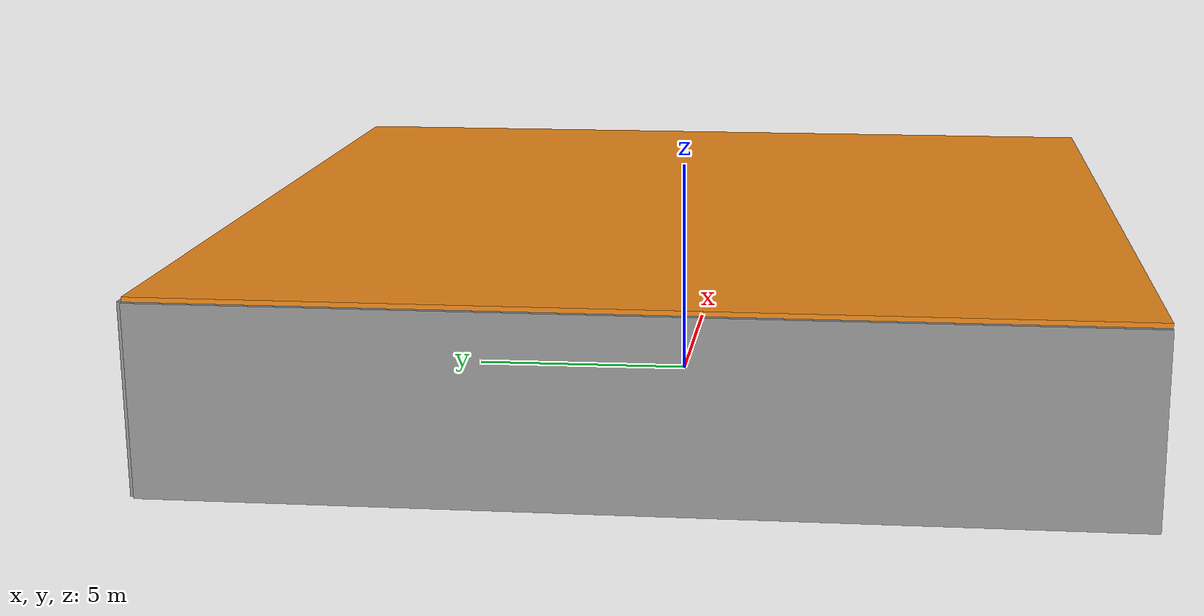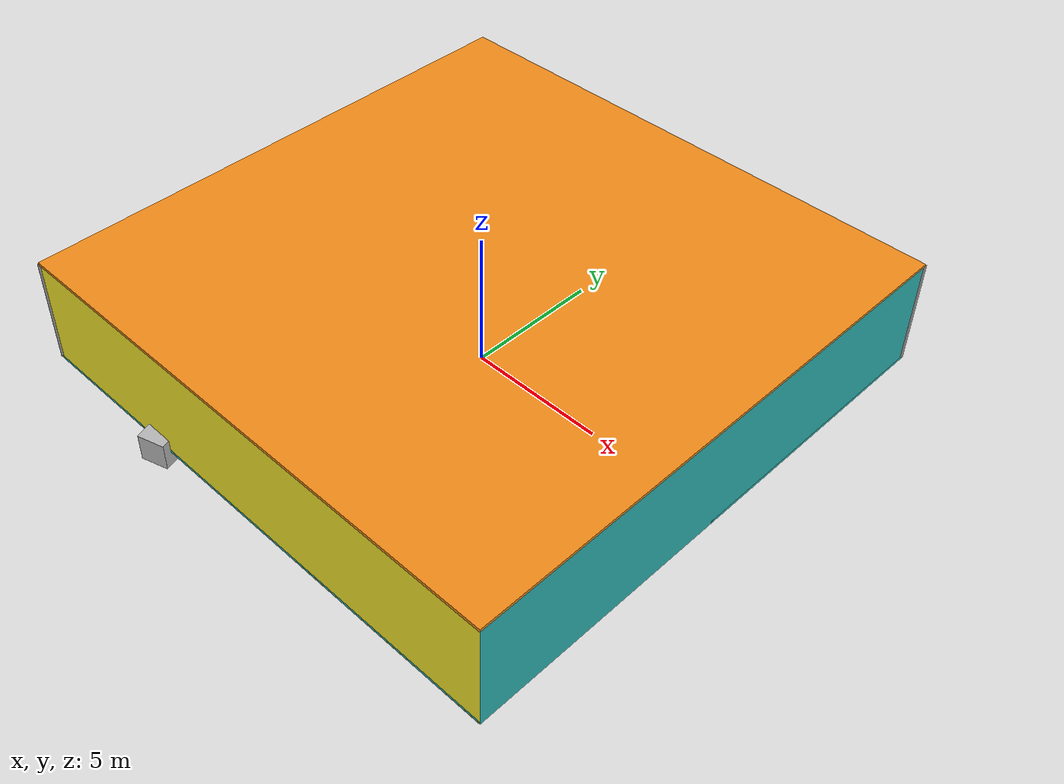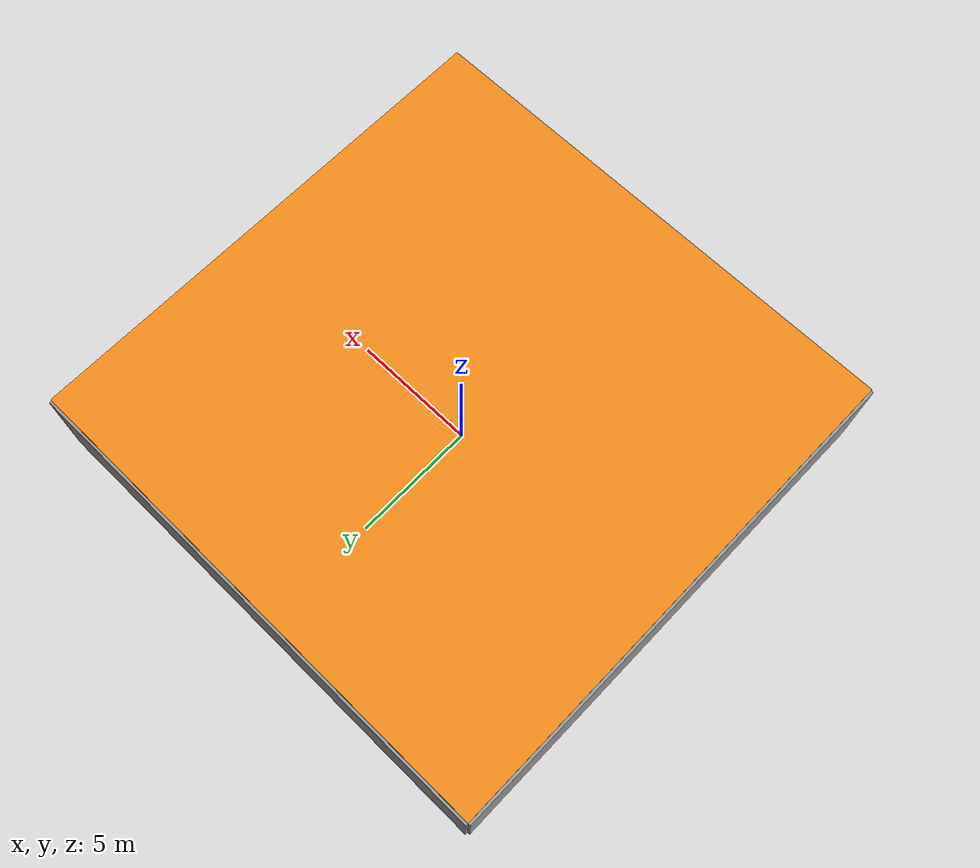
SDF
<sdf version="1.4">
 <world name="default">
  <physics type="ode">
   <max_step_size>0.001</max_step_size>
   <real_time_factor>1</real_time_factor>
   <real_time_update_rate>1000</real_time_update_rate>
   <gravity>0 0 -9.8</gravity>
  </physics>
  <scene><ambient>0.4 0.4 0.4 1</ambient><background>0.7 0.7 0.7 1</background><shadows>1</shadows></scene>
  <model name="Surrounding">
   <static>1</static>
   <link name="Ceiling">
    <collision name="Ceiling_Collision"><geometry><box><size>20 20 0.1</size></box></geometry></collision>
    <visual name="Ceiling_Visual">
     <geometry><box><size>20 20 0.1</size></box></geometry>
     <material>
      <script><uri>file://media/materials/scripts/gazebo.material</uri><name>Gazebo/Orange</name></script>
     </material>
    </visual>
    <pose>0 0 4.05 0 0 0</pose>
   </link>
   <link name="Wall_South">
    <collision name="Wall_South_Collision">
     <geometry><box><size>20 0 4</size></box></geometry>
     <pose>0 0 2 0 -0 0</pose>
    </collision>
    <visual name="Wall_South_Visual">
     <pose>0 0 2 0 -0 0</pose>
     <geometry><box><size>20 0 4</size></box></geometry>
     <material>
      <script><uri>file://media/materials/scripts/gazebo.material</uri><name>Gazebo/Yellow</name></script>
     </material>
    </visual>
    <velocity_decay><linear>0</linear><angular>0</angular></velocity_decay>
    <pose>0 -10 0 0 -0 0</pose>
   </link>
   <link name="Wall_East">
    <collision name="Wall_21_Collision">
     <geometry><box><size>20 0 4</size></box></geometry>
     <pose>0 0 2 0 -0 0</pose>
    </collision>
    <visual name="Wall_21_Visual">
     <pose>0 0 2 0 -0 0</pose>
     <geometry><box><size>20 0 4</size></box></geometry>
     <material>
      <script><uri>file://media/materials/scripts/gazebo.material</uri><name>Gazebo/TurquoiseGlow</name></script>
     </material>
    </visual>
    <velocity_decay><linear>0</linear><angular>0</angular></velocity_decay>
    <pose>10 0 0 0 -0 1.5708</pose>
   </link>
   <link name="Wall_North">
    <collision name="Wall_22_Collision">
     <geometry><box><size>20 0.2 4</size></box></geometry>
     <pose>0 0 2 0 -0 0</pose>
    </collision>
    <visual name="Wall_22_Visual">
     <pose>0 0 2 0 -0 0</pose>
     <geometry><box><size>20 0.2 4</size></box></geometry>
     <material>
      <script><uri>file://media/materials/scripts/gazebo.material</uri><name>Gazebo/Grey</name></script>
     </material>
    </visual>
    <velocity_decay><linear>0</linear><angular>0</angular></velocity_decay>
    <pose>0 10 0 0 -0 0</pose>
   </link>
   <link name="Wall_West">
    <collision name="Wall_23_Collision">
     <geometry><box><size>20 0.2 4</size></box></geometry>
     <pose>0 0 2 0 -0 0</pose>
    </collision>
    <visual name="Wall_23_Visual">
     <pose>0 0 2 0 -0 0</pose>
     <geometry><box><size>20 0.2 4</size></box></geometry>
     <material>
      <script><uri>file://media/materials/scripts/gazebo.material</uri><name>Gazebo/Grey</name></script>
     </material>
    </visual>
    <velocity_decay><linear>0</linear><angular>0</angular></velocity_decay>
    <pose>-10 0 0 0 0 -1.5708</pose>
   </link>
   <link name="Ground_link">
    <collision name="collision">
     <pose>0 0 .05 0 -0 0</pose>
     <geometry><box><size>20 20 0.1</size></box></geometry>
    </collision>
    <visual name="visual">
     <pose>0 0 .05 0 -0 0</pose>
     <geometry><box><size>20 20 0.1</size></box></geometry>
     <material>
      <script>
       <uri>file://media/materials/scripts/gazebo.material</uri>
       <name>Gazebo/TurquoiseGlowOutline</name>
      </script>
     </material>
    </visual>
   </link>
   <static>1</static>
  </model>
  <spherical_coordinates>
   <surface_model>EARTH_WGS84</surface_model>
   <latitude_deg>0</latitude_deg>
   <longitude_deg>0</longitude_deg>
   <elevation>0</elevation>
   <heading_deg>0</heading_deg>
  </spherical_coordinates>
  <light name="lightball_0" type="diffuse">
   <diffuse>0.8 0.8 0.8 1</diffuse>
   <specular>0.2 0.2 0.2 1</specular>
   <attenuation>
    <range>100</range>
    <constant>0.7</constant>
    <linear>0.01</linear>
    <quadratic>0.001</quadratic>
   </attenuation>
   <direction>-0.5 0.1 -0.9</direction>
   <pose>-1.69038987408 5.81250356178 1.6199712147 0 0 0</pose>
  </light>
  <light name="lightball_1" type="diffuse">
   <diffuse>0.8 0.8 0.8 1</diffuse>
   <specular>0.2 0.2 0.2 1</specular>
   <attenuation>
    <range>100</range>
    <constant>0.7</constant>
    <linear>0.01</linear>
    <quadratic>0.001</quadratic>
   </attenuation>
   <direction>-0.5 0.1 -0.9</direction>
   <pose>7.17310551491 -6.50413211522 1.30223239225 0 0 0</pose>
  </light>
  <light name="lightball_2" type="diffuse">
   <diffuse>0.8 0.8 0.8 1</diffuse>
   <specular>0.2 0.2 0.2 1</specular>
   <attenuation>
    <range>100</range>
    <constant>0.7</constant>
    <linear>0.01</linear>
    <quadratic>0.001</quadratic>
   </attenuation>
   <direction>-0.5 0.1 -0.9</direction>
   <pose>-8.14604274068 0.509614618002 1.18945666494 0 0 0</pose>
  </light>
  <light name="lightball_3" type="diffuse">
   <diffuse>0.8 0.8 0.8 1</diffuse>
   <specular>0.2 0.2 0.2 1</specular>
   <attenuation>
    <range>100</range>
    <constant>0.7</constant>
    <linear>0.01</linear>
    <quadratic>0.001</quadratic>
   </attenuation>
   <direction>-0.5 0.1 -0.9</direction>
   <pose>7.09469174064 0.802687089494 3.30134202628 0 0 0</pose>
  </light>
  <light name="lightball_4" type="diffuse">
   <diffuse>0.8 0.8 0.8 1</diffuse>
   <specular>0.2 0.2 0.2 1</specular>
   <attenuation>
    <range>100</range>
    <constant>0.7</constant>
    <linear>0.01</linear>
    <quadratic>0.001</quadratic>
   </attenuation>
   <direction>-0.5 0.1 -0.9</direction>
   <pose>-4.32893342584 7.02059850232 1.43342669449 0 0 0</pose>
  </light>
  <light name="lightball_5" type="diffuse">
   <diffuse>0.8 0.8 0.8 1</diffuse>
   <specular>0.2 0.2 0.2 1</specular>
   <attenuation>
    <range>100</range>
    <constant>0.7</constant>
    <linear>0.01</linear>
    <quadratic>0.001</quadratic>
   </attenuation>
   <direction>-0.5 0.1 -0.9</direction>
   <pose>-1.61411355098 -2.07374431604 3.67867032558 0 0 0</pose>
  </light>
  <light name="lightball_6" type="diffuse">
   <diffuse>0.8 0.8 0.8 1</diffuse>
   <specular>0.2 0.2 0.2 1</specular>
   <attenuation>
    <range>100</range>
    <constant>0.7</constant>
    <linear>0.01</linear>
    <quadratic>0.001</quadratic>
   </attenuation>
   <direction>-0.5 0.1 -0.9</direction>
   <pose>0.473515171721 4.38631399105 1.0203079301 0 0 0</pose>
  </light>
  <light name="lightball_7" type="diffuse">
   <diffuse>0.8 0.8 0.8 1</diffuse>
   <specular>0.2 0.2 0.2 1</specular>
   <attenuation>
    <range>100</range>
    <constant>0.7</constant>
    <linear>0.01</linear>
    <quadratic>0.001</quadratic>
   </attenuation>
   <direction>-0.5 0.1 -0.9</direction>
   <pose>3.26503792226 -0.757774695263 2.41926262875 0 0 0</pose>
  </light>
  <light name="lightball_8" type="diffuse">
   <diffuse>0.8 0.8 0.8 1</diffuse>
   <specular>0.2 0.2 0.2 1</specular>
   <attenuation>
    <range>100</range>
    <constant>0.7</constant>
    <linear>0.01</linear>
    <quadratic>0.001</quadratic>
   </attenuation>
   <direction>-0.5 0.1 -0.9</direction>
   <pose>-6.27508999582 8.70036331781 3.20781516711 0 0 0</pose>
  </light>
  <light name="lightball_9" type="diffuse">
   <diffuse>0.8 0.8 0.8 1</diffuse>
   <specular>0.2 0.2 0.2 1</specular>
   <attenuation>
    <range>100</range>
    <constant>0.7</constant>
    <linear>0.01</linear>
    <quadratic>0.001</quadratic>
   </attenuation>
   <direction>-0.5 0.1 -0.9</direction>
   <pose>1.64118079868 0.380284586239 1.94666872732 0 0 0</pose>
  </light>
  <light name="lightball_10" type="diffuse">
   <diffuse>0.8 0.8 0.8 1</diffuse>
   <specular>0.2 0.2 0.2 1</specular>
   <attenuation>
    <range>100</range>
    <constant>0.7</constant>
    <linear>0.01</linear>
    <quadratic>0.001</quadratic>
   </attenuation>
   <direction>-0.5 0.1 -0.9</direction>
   <pose>-2.16541787628 -4.21227507246 2.04519581459 0 0 0</pose>
  </light>
  <light name="lightball_11" type="diffuse">
   <diffuse>0.8 0.8 0.8 1</diffuse>
   <specular>0.2 0.2 0.2 1</specular>
   <attenuation>
    <range>100</range>
    <constant>0.7</constant>
    <linear>0.01</linear>
    <quadratic>0.001</quadratic>
   </attenuation>
   <direction>-0.5 0.1 -0.9</direction>
   <pose>-3.95358218817 6.05967760388 1.21736028421 0 0 0</pose>
  </light>
  <light name="lightball_12" type="diffuse">
   <diffuse>0.8 0.8 0.8 1</diffuse>
   <specular>0.2 0.2 0.2 1</specular>
   <attenuation>
    <range>100</range>
    <constant>0.7</constant>
    <linear>0.01</linear>
    <quadratic>0.001</quadratic>
   </attenuation>
   <direction>-0.5 0.1 -0.9</direction>
   <pose>-1.24684164969 -9.07497245484 3.2864048926 0 0 0</pose>
  </light>
  <light name="lightball_13" type="diffuse">
   <diffuse>0.8 0.8 0.8 1</diffuse>
   <specular>0.2 0.2 0.2 1</specular>
   <attenuation>
    <range>100</range>
    <constant>0.7</constant>
    <linear>0.01</linear>
    <quadratic>0.001</quadratic>
   </attenuation>
   <direction>-0.5 0.1 -0.9</direction>
   <pose>6.64693800311 -1.95924613332 1.19903176409 0 0 0</pose>
  </light>
  <include>
   <uri>model://construction_cone</uri>
   <pose>-6.94781565982 -8.50985469248 0 0 0 0.883481360549</pose>
  </include>
  <include>
   <uri>model://textured_shapes</uri>
   <pose>-4.76541455843 -8.51141607521 0 0 0 0.293314086452</pose>
  </include>
  <include>
   <uri>model://textured_shapes</uri>
   <pose>7.76226681153 6.33747676447 0 0 0 0.0511677295261</pose>
  </include>
 </world>
</sdf>

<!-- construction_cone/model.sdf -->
<sdf version="1.5">
  <model name="Construction Cone">
    <link name="link">
      <collision name="collision">
        <geometry>
          <mesh>
            <scale>10 10 10</scale>
            <uri>file://isr-testbed/construction_cone/meshes/construction_cone.dae</uri>
          </mesh>
        </geometry>
      </collision>
      <visual name="visual">
        <geometry>
          <mesh>
            <scale>10 10 10</scale>
            <uri>file://isr-testbed/construction_cone/meshes/construction_cone.dae</uri>
          </mesh>
        </geometry>
      </visual>
    </link>
  </model>
</sdf>

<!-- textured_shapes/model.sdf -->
<sdf version="1.6">
  <model name="textured_shapes">
    <pose>0 0 0.5 0 0 0</pose>
    <link name="box">
      <pose>0 -1.5 0 0 0 0</pose>
      <collision name="collision">
        <geometry>
          <box>
            <size>1 1 1</size>
          </box>
        </geometry>
      </collision>
      <visual name="visual">
        <geometry>
          <box>
            <size>1 1 1</size>
          </box>
        </geometry>
        <material>
          <script>
            <uri>model://../model_source/models/textured_shapes/materials/scripts</uri>
            <uri>model://../model_source/models/textured_shapes/materials/textures</uri>
            <name>TexturedShape/Squares</name>
          </script>
        </material>
      </visual>
    </link>
    <link name="sphere">
      <collision name="collision">
        <geometry>
          <sphere>
            <radius>0.5</radius>
          </sphere>
        </geometry>
      </collision>
      <visual name="visual">
        <geometry>
          <sphere>
            <radius>0.5</radius>
          </sphere>
        </geometry>
        <material>
          <script>
            <uri>model://../model_source/models/textured_shapes/materials/scripts</uri>
            <uri>model://../model_source/models/textured_shapes/materials/textures</uri>
            <name>TexturedShape/Squares</name>
          </script>
        </material>
      </visual>
    </link>
    <link name="cylinder">
      <pose>0 1.5 0 0 0 0</pose>
      <collision name="collision">
        <geometry>
          <cylinder>
            <radius>0.5</radius>
            <length>1</length>
          </cylinder>
        </geometry>
      </collision>
      <visual name="visual">
        <geometry>
          <cylinder>
            <radius>0.5</radius>
            <length>1</length>
          </cylinder>
        </geometry>
        <material>
          <script>
            <uri>model://../model_source/models/textured_shapes/materials/scripts</uri>
            <uri>model://../model_source/models/textured_shapes/materials/textures</uri>
            <name>TexturedShape/Squares</name>
          </script>
        </material>
      </visual>
    </link>
  </model>
</sdf>
